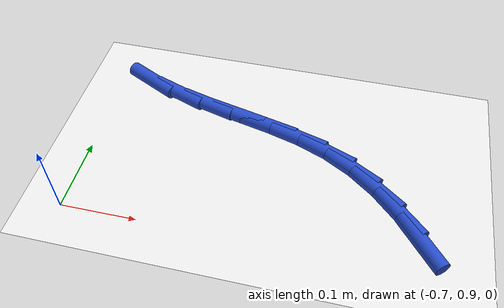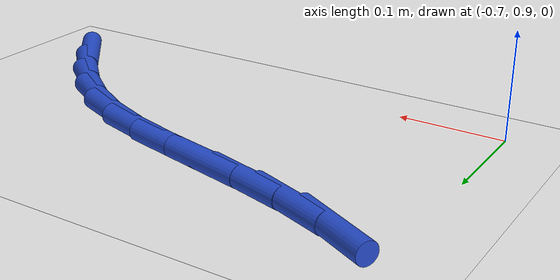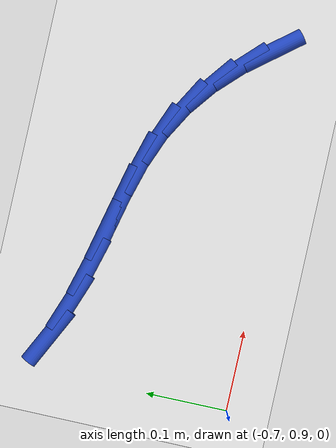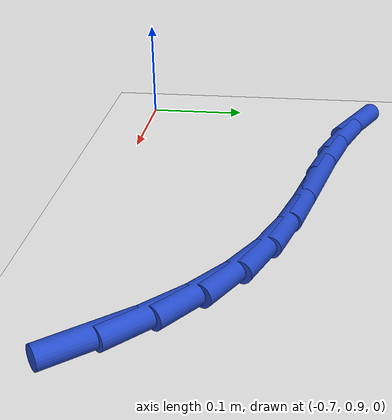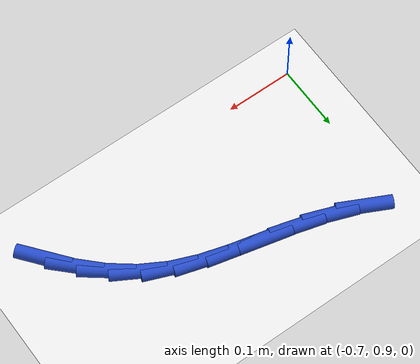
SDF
<sdf version="1.6">
 <world name="default">
  <model name="ground_plane">
   <static>1</static>
   <link name="link">
    <collision name="collision">
     <geometry><plane><normal>0 0 1</normal><size>100 100</size></plane></geometry>
     <surface><friction><ode><mu>100</mu><mu2>50</mu2></ode></friction></surface>
    </collision>
    <visual name="visual">
     <cast_shadows>0</cast_shadows>
     <geometry><plane><normal>0 0 1</normal><size>100 100</size></plane></geometry>
     <material>
      <script><uri>file://media/materials/scripts/gazebo.material</uri><name>Gazebo/WhiteGlow</name></script>
     </material>
    </visual>
   </link>
  </model>
  <model name="line">
   <link name="link_20">
    <pose>-0.25877329083729256 0.9409040016778477 0.01 0 1.57 -0.8948432570262178</pose>
    <collision name="collision">
     <geometry><cylinder><radius>0.01</radius><length>0.08</length></cylinder></geometry>
    </collision>
    <visual name="visual">
     <material>
      <script><name>Gazebo/Blue</name><uri>file://media/materials/scripts/gazebo.material</uri></script>
     </material>
     <geometry><cylinder><radius>0.01</radius><length>0.08</length></cylinder></geometry>
    </visual>
   </link>
   <link name="link_21">
    <pose>-0.28623289467651625 0.9751433438307888 0.01 0 1.57 -0.7829881689887205</pose>
    <collision name="collision">
     <geometry><cylinder><radius>0.01</radius><length>0.08</length></cylinder></geometry>
    </collision>
    <visual name="visual">
     <material>
      <script><name>Gazebo/Blue</name><uri>file://media/materials/scripts/gazebo.material</uri></script>
     </material>
     <geometry><cylinder><radius>0.01</radius><length>0.08</length></cylinder></geometry>
    </visual>
   </link>
   <link name="link_22">
    <pose>-0.3166469243465387 1.0054111303798814 0.01 0 1.57 -0.6562011089389734</pose>
    <collision name="collision">
     <geometry><cylinder><radius>0.01</radius><length>0.08</length></cylinder></geometry>
    </collision>
    <visual name="visual">
     <material>
      <script><name>Gazebo/Blue</name><uri>file://media/materials/scripts/gazebo.material</uri></script>
     </material>
     <geometry><cylinder><radius>0.01</radius><length>0.08</length></cylinder></geometry>
    </visual>
   </link>
   <link name="link_23">
    <pose>-0.35026321369614594 1.0312968721764932 0.01 0 1.57 -0.5173630755354961</pose>
    <collision name="collision">
     <geometry><cylinder><radius>0.01</radius><length>0.08</length></cylinder></geometry>
    </collision>
    <visual name="visual">
     <material>
      <script><name>Gazebo/Blue</name><uri>file://media/materials/scripts/gazebo.material</uri></script>
     </material>
     <geometry><cylinder><radius>0.01</radius><length>0.08</length></cylinder></geometry>
    </visual>
   </link>
   <link name="link_24">
    <pose>-0.3873295965741239 1.0523900800719925 0.01 0 1.57 -0.3772923429703742</pose>
    <collision name="collision">
     <geometry><cylinder><radius>0.01</radius><length>0.08</length></cylinder></geometry>
    </collision>
    <visual name="visual">
     <material>
      <script><name>Gazebo/Blue</name><uri>file://media/materials/scripts/gazebo.material</uri></script>
     </material>
     <geometry><cylinder><radius>0.01</radius><length>0.08</length></cylinder></geometry>
    </visual>
   </link>
   <link name="link_25">
    <pose>-0.42798120695719294 1.0684993577329536 0.01 0 1.57 -0.2773791502655162</pose>
    <collision name="collision">
     <geometry><cylinder><radius>0.01</radius><length>0.08</length></cylinder></geometry>
    </collision>
    <visual name="visual">
     <material>
      <script><name>Gazebo/Blue</name><uri>file://media/materials/scripts/gazebo.material</uri></script>
     </material>
     <geometry><cylinder><radius>0.01</radius><length>0.08</length></cylinder></geometry>
    </visual>
   </link>
   <link name="link_26">
    <pose>-0.47159060672109976 1.0809157778415626 0.01 0 1.57 -0.22889053049434502</pose>
    <collision name="collision">
     <geometry><cylinder><radius>0.01</radius><length>0.08</length></cylinder></geometry>
    </collision>
    <visual name="visual">
     <material>
      <script><name>Gazebo/Blue</name><uri>file://media/materials/scripts/gazebo.material</uri></script>
     </material>
     <geometry><cylinder><radius>0.01</radius><length>0.08</length></cylinder></geometry>
    </visual>
   </link>
   <link name="link_27">
    <pose>-0.5172142806119906 1.09154487897848 0.01 0 1.57 -0.22626791741306163</pose>
    <collision name="collision">
     <geometry><cylinder><radius>0.01</radius><length>0.08</length></cylinder></geometry>
    </collision>
    <visual name="visual">
     <material>
      <script><name>Gazebo/Blue</name><uri>file://media/materials/scripts/gazebo.material</uri></script>
     </material>
     <geometry><cylinder><radius>0.01</radius><length>0.08</length></cylinder></geometry>
    </visual>
   </link>
   <link name="link_28">
    <pose>-0.5639076973842758 1.102294174850739 0.01 0 1.57 -0.266416799407872</pose>
    <collision name="collision">
     <geometry><cylinder><radius>0.01</radius><length>0.08</length></cylinder></geometry>
    </collision>
    <visual name="visual">
     <material>
      <script><name>Gazebo/Blue</name><uri>file://media/materials/scripts/gazebo.material</uri></script>
     </material>
     <geometry><cylinder><radius>0.01</radius><length>0.08</length></cylinder></geometry>
    </visual>
   </link>
   <link name="link_29">
    <pose>-0.6107263257923654 1.1150711791653742 0.01 0 1.57 -0.3484869038103759</pose>
    <collision name="collision">
     <geometry><cylinder><radius>0.01</radius><length>0.08</length></cylinder></geometry>
    </collision>
    <visual name="visual">
     <material>
      <script><name>Gazebo/Blue</name><uri>file://media/materials/scripts/gazebo.material</uri></script>
     </material>
     <geometry><cylinder><radius>0.01</radius><length>0.08</length></cylinder></geometry>
    </visual>
   </link>
   <link name="link_30">
    <pose>-0.6567256345906695 1.1317834056294187 0.01 0 1.57 -0.4598449138621373</pose>
    <collision name="collision">
     <geometry><cylinder><radius>0.01</radius><length>0.08</length></cylinder></geometry>
    </collision>
    <visual name="visual">
     <material>
      <script><name>Gazebo/Blue</name><uri>file://media/materials/scripts/gazebo.material</uri></script>
     </material>
     <geometry><cylinder><radius>0.01</radius><length>0.08</length></cylinder></geometry>
    </visual>
   </link>
  </model>
 </world>
</sdf>
